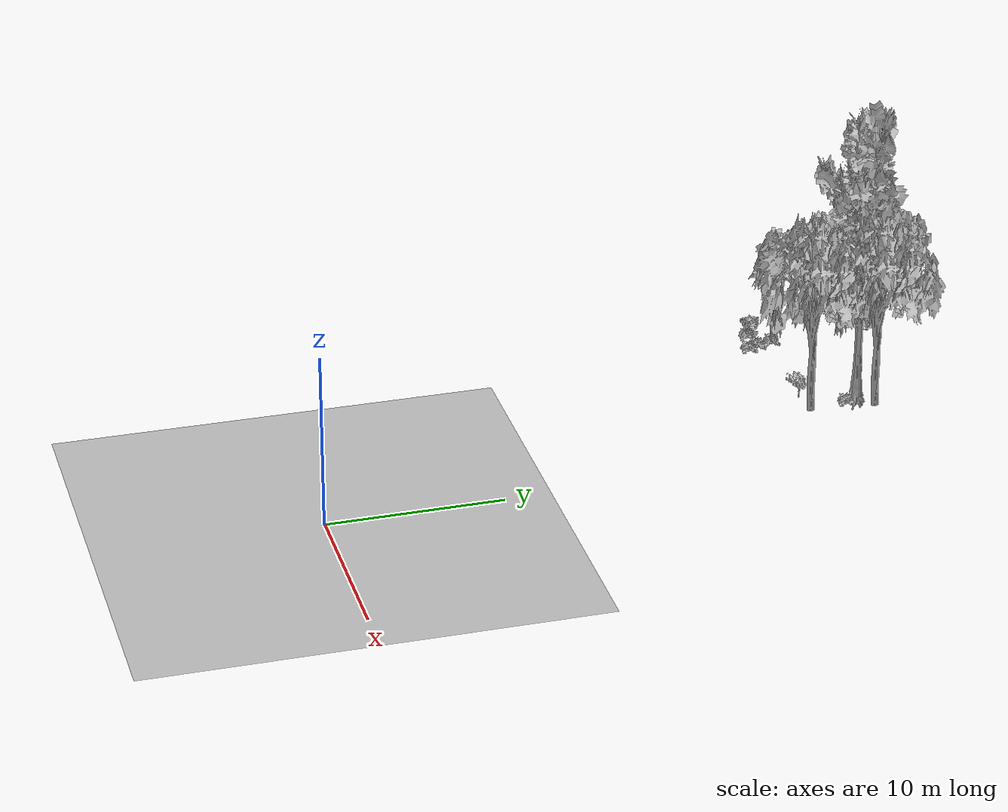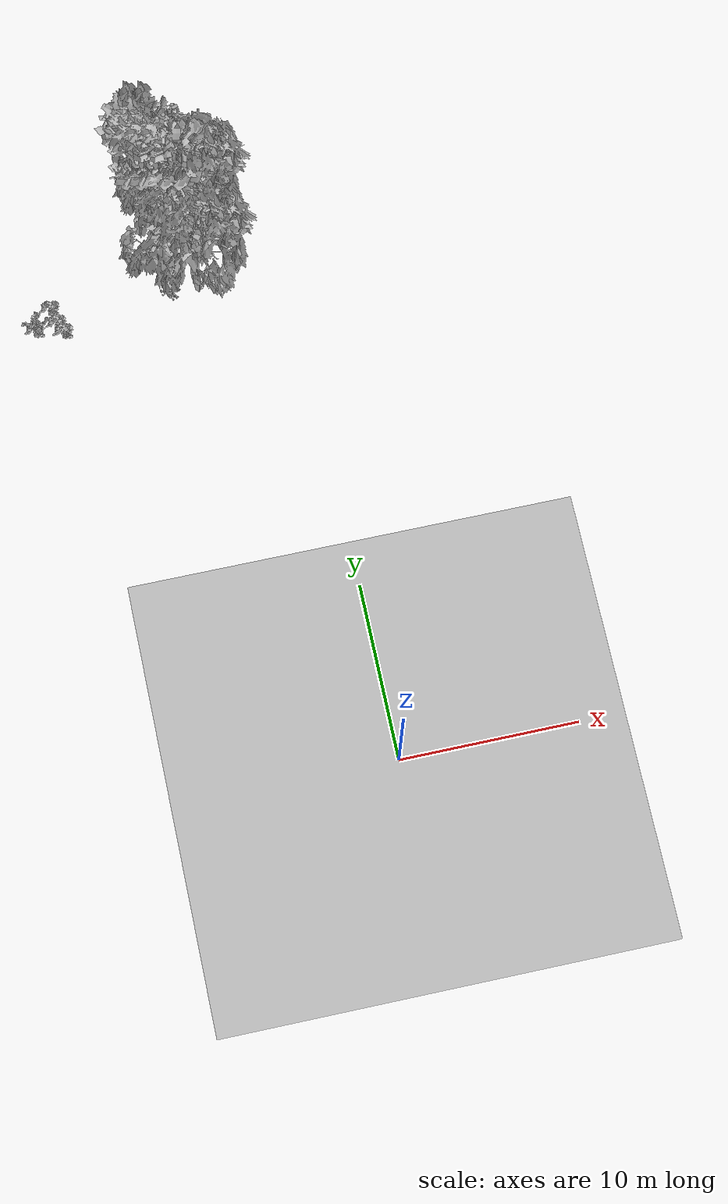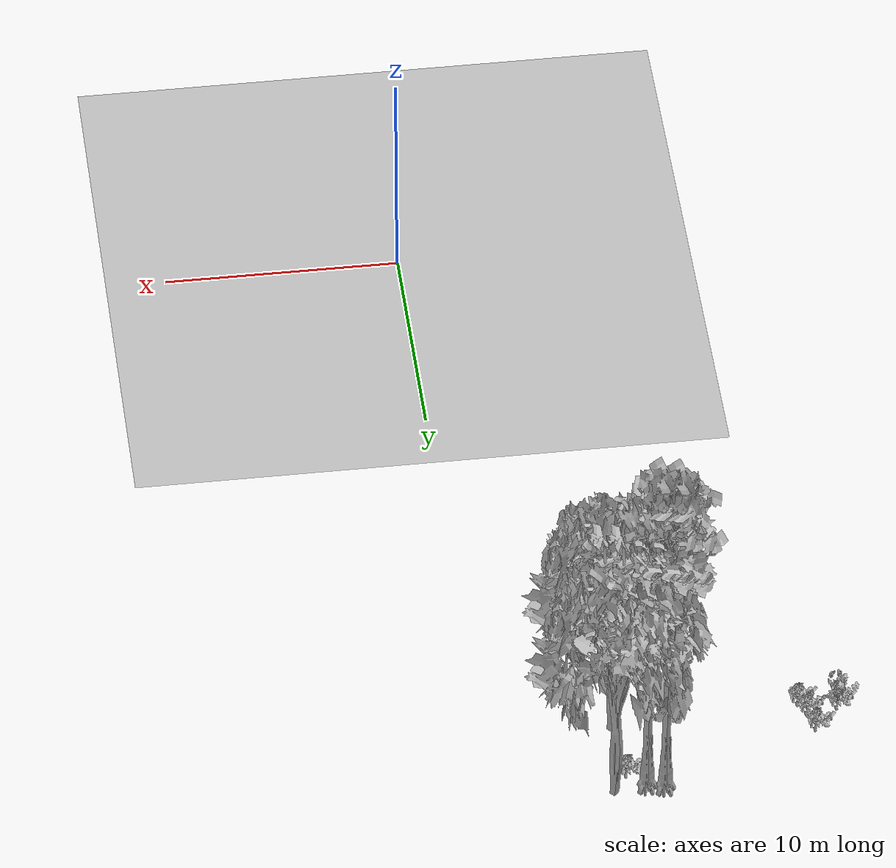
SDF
<sdf version="1.7">
 <world name="default">
  <model name="ground_plane">
   <static>1</static>
   <link name="link">
    <collision name="collision">
     <pose>-50 0 0 0 -0 0</pose>
     <geometry><plane><normal>0 0 1</normal><size>80 80</size></plane></geometry>
     <surface><contact><ode><min_depth>0.01</min_depth><max_vel>0</max_vel></ode></contact></surface>
    </collision>
    <visual name="grass">
     <cast_shadows>0</cast_shadows>
     <geometry>
      <mesh>
       <scale>0.46714285714285714 0.46714285714285714 0.1</scale>
       <uri>file://grass_plane/meshes/grass_plane.dae</uri>
      </mesh>
     </geometry>
    </visual>
   </link>
  </model>
  <model name="Tree 134">
   <static>1</static>
   <pose>-5.39618313859112 29.267427900310352 0 1.57079 -0 0</pose>
   <link name="link">
    <collision name="collision">
     <geometry><mesh><scale>3.5 5 3.5</scale><uri>model://tree_2/meshes/tree_2.obj</uri></mesh></geometry>
    </collision>
    <visual name="visual">
     <geometry><mesh><scale>3.5 5 3.5</scale><uri>model://tree_2/meshes/tree_2.obj</uri></mesh></geometry>
    </visual>
   </link>
  </model>
  <model name="Tree 145">
   <static>1</static>
   <pose>-7.066394808824377 32.60562106760945 0 1.57079 -0 0</pose>
   <link name="link">
    <collision name="collision">
     <geometry><mesh><scale>3.5 5 3.5</scale><uri>model://tree_9/meshes/tree_9.obj</uri></mesh></geometry>
    </collision>
    <visual name="visual">
     <geometry><mesh><scale>3.5 5 3.5</scale><uri>model://tree_9/meshes/tree_9.obj</uri></mesh></geometry>
    </visual>
   </link>
  </model>
  <model name="Tree 305">
   <static>1</static>
   <pose>-5.021434054180517 32.95550027573955 0 1.57079 -0 0</pose>
   <link name="link">
    <collision name="collision">
     <geometry><mesh><scale>3.5 5 3.5</scale><uri>model://tree_2/meshes/tree_2.obj</uri></mesh></geometry>
    </collision>
    <visual name="visual">
     <geometry><mesh><scale>3.5 5 3.5</scale><uri>model://tree_2/meshes/tree_2.obj</uri></mesh></geometry>
    </visual>
   </link>
  </model>
  <model name="Tree 631">
   <static>1</static>
   <pose>-6.334433767340755 32.4233386836315 0 1.57079 -0 0</pose>
   <link name="link">
    <collision name="collision">
     <geometry><mesh><scale>3.5 5 3.5</scale><uri>model://tree_9/meshes/tree_9.obj</uri></mesh></geometry>
    </collision>
    <visual name="visual">
     <geometry><mesh><scale>3.5 5 3.5</scale><uri>model://tree_9/meshes/tree_9.obj</uri></mesh></geometry>
    </visual>
   </link>
  </model>
  <model name="Bush 216">
   <static>1</static>
   <pose>-13.630361227863212 28.87144331448964 0 1.57079 -0 0</pose>
   <link name="link">
    <collision name="collision">
     <geometry><mesh><scale>2 2 2</scale><uri>model://bush_2/meshes/bush_2.obj</uri></mesh></geometry>
     <surface><contact><collide_without_contact>false</collide_without_contact></contact></surface>
    </collision>
    <visual name="visual">
     <geometry><mesh><scale>2 2 2</scale><uri>model://bush_2/meshes/bush_2.obj</uri></mesh></geometry>
    </visual>
   </link>
  </model>
  <model name="Bush 270">
   <static>1</static>
   <pose>-13.85964143743654 29.82204022258871 0 1.57079 -0 0</pose>
   <link name="link">
    <collision name="collision">
     <geometry><mesh><scale>2 2 2</scale><uri>model://bush_2/meshes/bush_2.obj</uri></mesh></geometry>
     <surface><contact><collide_without_contact>false</collide_without_contact></contact></surface>
    </collision>
    <visual name="visual">
     <geometry><mesh><scale>2 2 2</scale><uri>model://bush_2/meshes/bush_2.obj</uri></mesh></geometry>
    </visual>
   </link>
  </model>
  <model name="Bush 281">
   <static>1</static>
   <pose>-14.909115002147622 28.691580504858948 0 1.57079 -0 0</pose>
   <link name="link">
    <collision name="collision">
     <geometry><mesh><scale>2 2 2</scale><uri>model://bush_2/meshes/bush_2.obj</uri></mesh></geometry>
     <surface><contact><collide_without_contact>false</collide_without_contact></contact></surface>
    </collision>
    <visual name="visual">
     <geometry><mesh><scale>2 2 2</scale><uri>model://bush_2/meshes/bush_2.obj</uri></mesh></geometry>
    </visual>
   </link>
  </model>
  <model name="Bush 408">
   <static>1</static>
   <pose>-13.343529817114106 28.28711975431304 0 1.57079 -0 0</pose>
   <link name="link">
    <collision name="collision">
     <geometry><mesh><scale>2 2 2</scale><uri>model://bush_2/meshes/bush_2.obj</uri></mesh></geometry>
     <surface><contact><collide_without_contact>false</collide_without_contact></contact></surface>
    </collision>
    <visual name="visual">
     <geometry><mesh><scale>2 2 2</scale><uri>model://bush_2/meshes/bush_2.obj</uri></mesh></geometry>
    </visual>
   </link>
  </model>
  <model name="Bush 503">
   <static>1</static>
   <pose>-5.795153300049108 31.536131411039392 0 1.57079 -0 0</pose>
   <link name="link">
    <collision name="collision">
     <geometry><mesh><scale>2 2 2</scale><uri>model://bush_2/meshes/bush_2.obj</uri></mesh></geometry>
     <surface><contact><collide_without_contact>false</collide_without_contact></contact></surface>
    </collision>
    <visual name="visual">
     <geometry><mesh><scale>2 2 2</scale><uri>model://bush_2/meshes/bush_2.obj</uri></mesh></geometry>
    </visual>
   </link>
  </model>
  <model name="Bush 510">
   <static>1</static>
   <pose>-6.878303642133151 29.130908174031887 0 1.57079 -0 0</pose>
   <link name="link">
    <collision name="collision">
     <geometry><mesh><scale>2 2 2</scale><uri>model://bush_5/meshes/bush_5.obj</uri></mesh></geometry>
     <surface><contact><collide_without_contact>false</collide_without_contact></contact></surface>
    </collision>
    <visual name="visual">
     <geometry><mesh><scale>2 2 2</scale><uri>model://bush_5/meshes/bush_5.obj</uri></mesh></geometry>
    </visual>
   </link>
  </model>
  <model name="Bush 511">
   <static>1</static>
   <pose>-14.815825213974637 28.740849347373143 0 1.57079 -0 0</pose>
   <link name="link">
    <collision name="collision">
     <geometry><mesh><scale>2 2 2</scale><uri>model://bush_4/meshes/bush_4.obj</uri></mesh></geometry>
     <surface><contact><collide_without_contact>false</collide_without_contact></contact></surface>
    </collision>
    <visual name="visual">
     <geometry><mesh><scale>2 2 2</scale><uri>model://bush_4/meshes/bush_4.obj</uri></mesh></geometry>
    </visual>
   </link>
  </model>
 </world>
</sdf>
